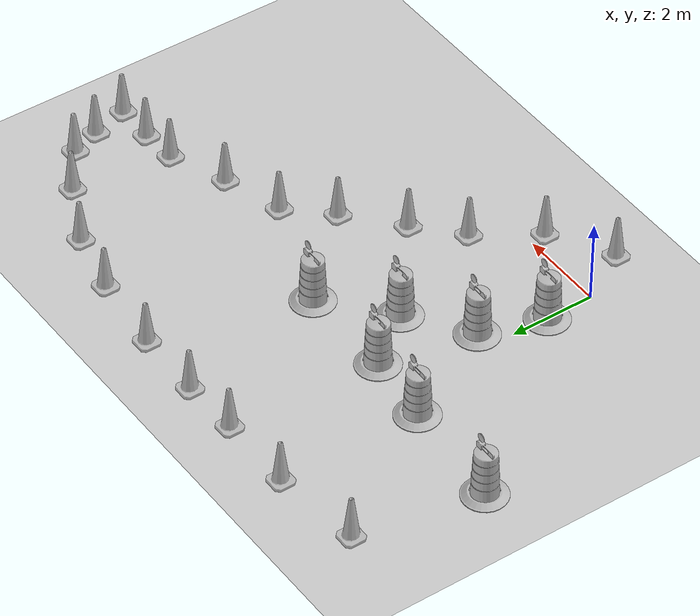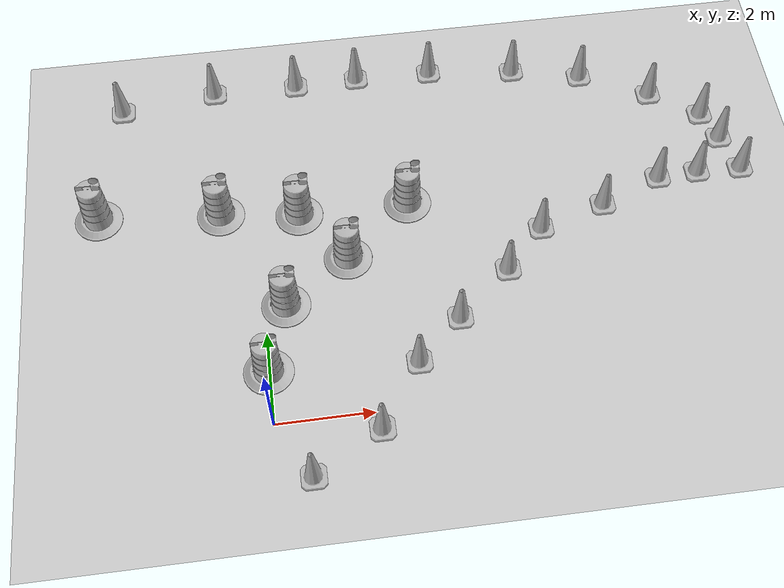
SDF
<sdf version="1.7">
 <world name="default">
  <light name="sun" type="directional">
   <pose>0 0 10 0 -0 0</pose>
   <diffuse>0.8 0.8 0.8 1</diffuse>
   <specular>0.2 0.2 0.2 1</specular>
   <attenuation>
    <range>1000</range>
    <constant>0.9</constant>
    <linear>0.01</linear>
    <quadratic>0.001</quadratic>
   </attenuation>
   <direction>-0.5 0.1 -0.9</direction>
   <spot><inner_angle>0</inner_angle><outer_angle>0</outer_angle><falloff>0</falloff></spot>
  </light>
  <model name="ground_plane">
   <static>1</static>
   <link name="link">
    <collision name="collision">
     <geometry><plane><normal>0 0 1</normal><size>100 100</size></plane></geometry>
     <surface>
      <contact><collide_bitmask>65535</collide_bitmask></contact>
      <friction><ode><mu>100</mu><mu2>50</mu2></ode></friction>
     </surface>
    </collision>
    <visual name="visual">
     <cast_shadows>0</cast_shadows>
     <geometry><plane><normal>0 0 1</normal><size>100 100</size></plane></geometry>
     <material>
      <script><uri>file://media/materials/scripts/gazebo.material</uri><name>Gazebo/Grey</name></script>
     </material>
    </visual>
   </link>
  </model>
  <gravity>0 0 -9.8</gravity>
  <magnetic_field>6e-06 2.3e-05 -4.2e-05</magnetic_field>
  <atmosphere type="adiabatic"/>
  <physics type="ode">
   <max_step_size>0.001</max_step_size>
   <real_time_factor>1</real_time_factor>
   <real_time_update_rate>1000</real_time_update_rate>
  </physics>
  <scene><ambient>0.4 0.4 0.4 1</ambient><background>0.7 0.7 0.7 1</background><shadows>1</shadows></scene>
  <audio><device>default</device></audio>
  <spherical_coordinates>
   <surface_model>EARTH_WGS84</surface_model>
   <latitude_deg>0</latitude_deg>
   <longitude_deg>0</longitude_deg>
   <elevation>0</elevation>
   <heading_deg>0</heading_deg>
  </spherical_coordinates>
  <model name="Construction Barrel">
   <link name="link">
    <inertial>
     <pose>0 0 0.4 0 -0 0</pose>
     <mass>500</mass>
     <inertia><ixx>51.2096</ixx><iyy>51.2096</iyy><izz>25</izz><ixy>0</ixy><ixz>0</ixz><iyz>0</iyz></inertia>
    </inertial>
    <collision name="collision">
     <geometry><mesh><uri>model://construction_barrel/meshes/construction_barrel.dae</uri></mesh></geometry>
    </collision>
    <visual name="visual">
     <geometry><mesh><uri>model://construction_barrel/meshes/construction_barrel.dae</uri></mesh></geometry>
    </visual>
   </link>
   <pose>-0.018904 1.14292 1e-06 3e-06 2e-06 -3.8e-05</pose>
  </model>
  <model name="Construction Barrel_0">
   <link name="link">
    <inertial>
     <pose>0 0 0.4 0 -0 0</pose>
     <mass>500</mass>
     <inertia><ixx>51.2096</ixx><iyy>51.2096</iyy><izz>25</izz><ixy>0</ixy><ixz>0</ixz><iyz>0</iyz></inertia>
    </inertial>
    <collision name="collision">
     <geometry><mesh><uri>model://construction_barrel/meshes/construction_barrel.dae</uri></mesh></geometry>
    </collision>
    <visual name="visual">
     <geometry><mesh><uri>model://construction_barrel/meshes/construction_barrel.dae</uri></mesh></geometry>
    </visual>
   </link>
   <pose>0.437305 2.6102 1e-06 3e-06 2e-06 -3.7e-05</pose>
  </model>
  <model name="Construction Barrel_1">
   <link name="link">
    <inertial>
     <pose>0 0 0.4 0 -0 0</pose>
     <mass>500</mass>
     <inertia><ixx>51.2096</ixx><iyy>51.2096</iyy><izz>25</izz><ixy>0</ixy><ixz>0</ixz><iyz>0</iyz></inertia>
    </inertial>
    <collision name="collision">
     <geometry><mesh><uri>model://construction_barrel/meshes/construction_barrel.dae</uri></mesh></geometry>
    </collision>
    <visual name="visual">
     <geometry><mesh><uri>model://construction_barrel/meshes/construction_barrel.dae</uri></mesh></geometry>
    </visual>
   </link>
   <pose>1.81056 3.58221 1e-06 3e-06 2e-06 -3.5e-05</pose>
  </model>
  <model name="Construction Barrel_2">
   <link name="link">
    <inertial>
     <pose>0 0 0.4 0 -0 0</pose>
     <mass>500</mass>
     <inertia><ixx>51.2096</ixx><iyy>51.2096</iyy><izz>25</izz><ixy>0</ixy><ixz>0</ixz><iyz>0</iyz></inertia>
    </inertial>
    <collision name="collision">
     <geometry><mesh><uri>model://construction_barrel/meshes/construction_barrel.dae</uri></mesh></geometry>
    </collision>
    <visual name="visual">
     <geometry><mesh><uri>model://construction_barrel/meshes/construction_barrel.dae</uri></mesh></geometry>
    </visual>
   </link>
   <pose>3.21513 4.81353 1e-06 3e-06 2e-06 -3.4e-05</pose>
  </model>
  <model name="Construction Cone">
   <link name="link">
    <collision name="collision">
     <geometry>
      <mesh><scale>10 10 10</scale><uri>model://construction_cone/meshes/construction_cone.dae</uri></mesh>
     </geometry>
    </collision>
    <visual name="visual">
     <geometry>
      <mesh><scale>10 10 10</scale><uri>model://construction_cone/meshes/construction_cone.dae</uri></mesh>
     </geometry>
    </visual>
    <inertial>
     <inertia><ixx>1</ixx><ixy>0</ixy><ixz>0</ixz><iyy>1</iyy><iyz>0</iyz><izz>1</izz></inertia>
     <mass>1</mass>
    </inertial>
   </link>
   <pose>0.675695 -1.19338 -1e-05 -1e-06 0 0</pose>
  </model>
  <model name="Construction Cone_0">
   <link name="link">
    <collision name="collision">
     <geometry>
      <mesh><scale>10 10 10</scale><uri>model://construction_cone/meshes/construction_cone.dae</uri></mesh>
     </geometry>
    </collision>
    <visual name="visual">
     <geometry>
      <mesh><scale>10 10 10</scale><uri>model://construction_cone/meshes/construction_cone.dae</uri></mesh>
     </geometry>
    </visual>
    <inertial>
     <inertia><ixx>1</ixx><ixy>0</ixy><ixz>0</ixz><iyy>1</iyy><iyz>0</iyz><izz>1</izz></inertia>
     <mass>1</mass>
    </inertial>
   </link>
   <pose>2.07812 -0.374297 -0 0 -1e-06 0</pose>
  </model>
  <model name="Construction Cone_1">
   <link name="link">
    <collision name="collision">
     <geometry>
      <mesh><scale>10 10 10</scale><uri>model://construction_cone/meshes/construction_cone.dae</uri></mesh>
     </geometry>
    </collision>
    <visual name="visual">
     <geometry>
      <mesh><scale>10 10 10</scale><uri>model://construction_cone/meshes/construction_cone.dae</uri></mesh>
     </geometry>
    </visual>
    <inertial>
     <inertia><ixx>1</ixx><ixy>0</ixy><ixz>0</ixz><iyy>1</iyy><iyz>0</iyz><izz>1</izz></inertia>
     <mass>1</mass>
    </inertial>
   </link>
   <pose>2.97668 0.972655 -5e-06 -4e-06 1e-06 0</pose>
  </model>
  <model name="Construction Cone_2">
   <link name="link">
    <collision name="collision">
     <geometry>
      <mesh><scale>10 10 10</scale><uri>model://construction_cone/meshes/construction_cone.dae</uri></mesh>
     </geometry>
    </collision>
    <visual name="visual">
     <geometry>
      <mesh><scale>10 10 10</scale><uri>model://construction_cone/meshes/construction_cone.dae</uri></mesh>
     </geometry>
    </visual>
    <inertial>
     <inertia><ixx>1</ixx><ixy>0</ixy><ixz>0</ixz><iyy>1</iyy><iyz>0</iyz><izz>1</izz></inertia>
     <mass>1</mass>
    </inertial>
   </link>
   <pose>3.93171 1.86295 -0 0 -0 0</pose>
  </model>
  <model name="Construction Cone_3">
   <link name="link">
    <collision name="collision">
     <geometry>
      <mesh><scale>10 10 10</scale><uri>model://construction_cone/meshes/construction_cone.dae</uri></mesh>
     </geometry>
    </collision>
    <visual name="visual">
     <geometry>
      <mesh><scale>10 10 10</scale><uri>model://construction_cone/meshes/construction_cone.dae</uri></mesh>
     </geometry>
    </visual>
    <inertial>
     <inertia><ixx>1</ixx><ixy>0</ixy><ixz>0</ixz><iyy>1</iyy><iyz>0</iyz><izz>1</izz></inertia>
     <mass>1</mass>
    </inertial>
   </link>
   <pose>5.08822 2.87285 -0 0 -1e-06 0</pose>
  </model>
  <model name="Construction Cone_4">
   <link name="link">
    <collision name="collision">
     <geometry>
      <mesh><scale>10 10 10</scale><uri>model://construction_cone/meshes/construction_cone.dae</uri></mesh>
     </geometry>
    </collision>
    <visual name="visual">
     <geometry>
      <mesh><scale>10 10 10</scale><uri>model://construction_cone/meshes/construction_cone.dae</uri></mesh>
     </geometry>
    </visual>
    <inertial>
     <inertia><ixx>1</ixx><ixy>0</ixy><ixz>0</ixz><iyy>1</iyy><iyz>0</iyz><izz>1</izz></inertia>
     <mass>1</mass>
    </inertial>
   </link>
   <pose>5.9539 3.79334 -6e-06 -4e-06 1e-06 0</pose>
  </model>
  <model name="Construction Cone_5">
   <link name="link">
    <collision name="collision">
     <geometry>
      <mesh><scale>10 10 10</scale><uri>model://construction_cone/meshes/construction_cone.dae</uri></mesh>
     </geometry>
    </collision>
    <visual name="visual">
     <geometry>
      <mesh><scale>10 10 10</scale><uri>model://construction_cone/meshes/construction_cone.dae</uri></mesh>
     </geometry>
    </visual>
    <inertial>
     <inertia><ixx>1</ixx><ixy>0</ixy><ixz>0</ixz><iyy>1</iyy><iyz>0</iyz><izz>1</izz></inertia>
     <mass>1</mass>
    </inertial>
   </link>
   <pose>7.38032 4.22304 -0 0 -0 0</pose>
  </model>
  <model name="Construction Cone_6">
   <link name="link">
    <collision name="collision">
     <geometry>
      <mesh><scale>10 10 10</scale><uri>model://construction_cone/meshes/construction_cone.dae</uri></mesh>
     </geometry>
    </collision>
    <visual name="visual">
     <geometry>
      <mesh><scale>10 10 10</scale><uri>model://construction_cone/meshes/construction_cone.dae</uri></mesh>
     </geometry>
    </visual>
    <inertial>
     <inertia><ixx>1</ixx><ixy>0</ixy><ixz>0</ixz><iyy>1</iyy><iyz>0</iyz><izz>1</izz></inertia>
     <mass>1</mass>
    </inertial>
   </link>
   <pose>8.71171 4.7609 -0 0 -0 0</pose>
  </model>
  <model name="Construction Cone_7">
   <link name="link">
    <collision name="collision">
     <geometry>
      <mesh><scale>10 10 10</scale><uri>model://construction_cone/meshes/construction_cone.dae</uri></mesh>
     </geometry>
    </collision>
    <visual name="visual">
     <geometry>
      <mesh><scale>10 10 10</scale><uri>model://construction_cone/meshes/construction_cone.dae</uri></mesh>
     </geometry>
    </visual>
    <inertial>
     <inertia><ixx>1</ixx><ixy>0</ixy><ixz>0</ixz><iyy>1</iyy><iyz>0</iyz><izz>1</izz></inertia>
     <mass>1</mass>
    </inertial>
   </link>
   <pose>10.5567 4.79134 -0 0 -0 0</pose>
  </model>
  <model name="Construction Cone_8">
   <link name="link">
    <collision name="collision">
     <geometry>
      <mesh><scale>10 10 10</scale><uri>model://construction_cone/meshes/construction_cone.dae</uri></mesh>
     </geometry>
    </collision>
    <visual name="visual">
     <geometry>
      <mesh><scale>10 10 10</scale><uri>model://construction_cone/meshes/construction_cone.dae</uri></mesh>
     </geometry>
    </visual>
    <inertial>
     <inertia><ixx>1</ixx><ixy>0</ixy><ixz>0</ixz><iyy>1</iyy><iyz>0</iyz><izz>1</izz></inertia>
     <mass>1</mass>
    </inertial>
   </link>
   <pose>10.0429 6.35309 -0 0 -1e-06 0</pose>
  </model>
  <model name="Construction Cone_9">
   <link name="link">
    <collision name="collision">
     <geometry>
      <mesh><scale>10 10 10</scale><uri>model://construction_cone/meshes/construction_cone.dae</uri></mesh>
     </geometry>
    </collision>
    <visual name="visual">
     <geometry>
      <mesh><scale>10 10 10</scale><uri>model://construction_cone/meshes/construction_cone.dae</uri></mesh>
     </geometry>
    </visual>
    <inertial>
     <inertia><ixx>1</ixx><ixy>0</ixy><ixz>0</ixz><iyy>1</iyy><iyz>0</iyz><izz>1</izz></inertia>
     <mass>1</mass>
    </inertial>
   </link>
   <pose>10.3041 5.65808 -0 0 -1e-06 0</pose>
  </model>
  <model name="Construction Cone_10">
   <link name="link">
    <collision name="collision">
     <geometry>
      <mesh><scale>10 10 10</scale><uri>model://construction_cone/meshes/construction_cone.dae</uri></mesh>
     </geometry>
    </collision>
    <visual name="visual">
     <geometry>
      <mesh><scale>10 10 10</scale><uri>model://construction_cone/meshes/construction_cone.dae</uri></mesh>
     </geometry>
    </visual>
    <inertial>
     <inertia><ixx>1</ixx><ixy>0</ixy><ixz>0</ixz><iyy>1</iyy><iyz>0</iyz><izz>1</izz></inertia>
     <mass>1</mass>
    </inertial>
   </link>
   <pose>9.59513 4.80863 -6e-06 -4e-06 0 0</pose>
  </model>
  <model name="Construction Cone_11">
   <link name="link">
    <collision name="collision">
     <geometry>
      <mesh><scale>10 10 10</scale><uri>model://construction_cone/meshes/construction_cone.dae</uri></mesh>
     </geometry>
    </collision>
    <visual name="visual">
     <geometry>
      <mesh><scale>10 10 10</scale><uri>model://construction_cone/meshes/construction_cone.dae</uri></mesh>
     </geometry>
    </visual>
    <inertial>
     <inertia><ixx>1</ixx><ixy>0</ixy><ixz>0</ixz><iyy>1</iyy><iyz>0</iyz><izz>1</izz></inertia>
     <mass>1</mass>
    </inertial>
   </link>
   <pose>9.02265 7.06454 -0 0 -0 0</pose>
  </model>
  <model name="Construction Cone_12">
   <link name="link">
    <collision name="collision">
     <geometry>
      <mesh><scale>10 10 10</scale><uri>model://construction_cone/meshes/construction_cone.dae</uri></mesh>
     </geometry>
    </collision>
    <visual name="visual">
     <geometry>
      <mesh><scale>10 10 10</scale><uri>model://construction_cone/meshes/construction_cone.dae</uri></mesh>
     </geometry>
    </visual>
    <inertial>
     <inertia><ixx>1</ixx><ixy>0</ixy><ixz>0</ixz><iyy>1</iyy><iyz>0</iyz><izz>1</izz></inertia>
     <mass>1</mass>
    </inertial>
   </link>
   <pose>7.55819 7.78126 -0 0 -1e-06 0</pose>
  </model>
  <model name="Construction Cone_13">
   <link name="link">
    <collision name="collision">
     <geometry>
      <mesh><scale>10 10 10</scale><uri>model://construction_cone/meshes/construction_cone.dae</uri></mesh>
     </geometry>
    </collision>
    <visual name="visual">
     <geometry>
      <mesh><scale>10 10 10</scale><uri>model://construction_cone/meshes/construction_cone.dae</uri></mesh>
     </geometry>
    </visual>
    <inertial>
     <inertia><ixx>1</ixx><ixy>0</ixy><ixz>0</ixz><iyy>1</iyy><iyz>0</iyz><izz>1</izz></inertia>
     <mass>1</mass>
    </inertial>
   </link>
   <pose>6.0462 8.12827 -8e-06 -6e-06 -0 -0</pose>
  </model>
  <model name="Construction Cone_14">
   <link name="link">
    <collision name="collision">
     <geometry>
      <mesh><scale>10 10 10</scale><uri>model://construction_cone/meshes/construction_cone.dae</uri></mesh>
     </geometry>
    </collision>
    <visual name="visual">
     <geometry>
      <mesh><scale>10 10 10</scale><uri>model://construction_cone/meshes/construction_cone.dae</uri></mesh>
     </geometry>
    </visual>
    <inertial>
     <inertia><ixx>1</ixx><ixy>0</ixy><ixz>0</ixz><iyy>1</iyy><iyz>0</iyz><izz>1</izz></inertia>
     <mass>1</mass>
    </inertial>
   </link>
   <pose>4.14719 8.33324 -1e-05 -1e-06 0 0</pose>
  </model>
  <model name="Construction Cone_15">
   <link name="link">
    <collision name="collision">
     <geometry>
      <mesh><scale>10 10 10</scale><uri>model://construction_cone/meshes/construction_cone.dae</uri></mesh>
     </geometry>
    </collision>
    <visual name="visual">
     <geometry>
      <mesh><scale>10 10 10</scale><uri>model://construction_cone/meshes/construction_cone.dae</uri></mesh>
     </geometry>
    </visual>
    <inertial>
     <inertia><ixx>1</ixx><ixy>0</ixy><ixz>0</ixz><iyy>1</iyy><iyz>0</iyz><izz>1</izz></inertia>
     <mass>1</mass>
    </inertial>
   </link>
   <pose>2.47476 8.36789 -1e-06 2e-06 2e-06 0</pose>
  </model>
  <model name="Construction Cone_16">
   <link name="link">
    <collision name="collision">
     <geometry>
      <mesh><scale>10 10 10</scale><uri>model://construction_cone/meshes/construction_cone.dae</uri></mesh>
     </geometry>
    </collision>
    <visual name="visual">
     <geometry>
      <mesh><scale>10 10 10</scale><uri>model://construction_cone/meshes/construction_cone.dae</uri></mesh>
     </geometry>
    </visual>
    <inertial>
     <inertia><ixx>1</ixx><ixy>0</ixy><ixz>0</ixz><iyy>1</iyy><iyz>0</iyz><izz>1</izz></inertia>
     <mass>1</mass>
    </inertial>
   </link>
   <pose>1.09254 8.32034 0 -0 -0 -0</pose>
  </model>
  <model name="Construction Cone_17">
   <link name="link">
    <collision name="collision">
     <geometry>
      <mesh><scale>10 10 10</scale><uri>model://construction_cone/meshes/construction_cone.dae</uri></mesh>
     </geometry>
    </collision>
    <visual name="visual">
     <geometry>
      <mesh><scale>10 10 10</scale><uri>model://construction_cone/meshes/construction_cone.dae</uri></mesh>
     </geometry>
    </visual>
    <inertial>
     <inertia><ixx>1</ixx><ixy>0</ixy><ixz>0</ixz><iyy>1</iyy><iyz>0</iyz><izz>1</izz></inertia>
     <mass>1</mass>
    </inertial>
   </link>
   <pose>-0.748188 8.33141 -0 0 -0 0</pose>
  </model>
  <model name="Construction Cone_18">
   <link name="link">
    <collision name="collision">
     <geometry>
      <mesh><scale>10 10 10</scale><uri>model://construction_cone/meshes/construction_cone.dae</uri></mesh>
     </geometry>
    </collision>
    <visual name="visual">
     <geometry>
      <mesh><scale>10 10 10</scale><uri>model://construction_cone/meshes/construction_cone.dae</uri></mesh>
     </geometry>
    </visual>
    <inertial>
     <inertia><ixx>1</ixx><ixy>0</ixy><ixz>0</ixz><iyy>1</iyy><iyz>0</iyz><izz>1</izz></inertia>
     <mass>1</mass>
    </inertial>
   </link>
   <pose>-2.81349 8.06634 -0 0 -0 0</pose>
  </model>
  <model name="Construction Barrel_3">
   <link name="link">
    <inertial>
     <pose>0 0 0.4 0 -0 0</pose>
     <mass>500</mass>
     <inertia><ixx>51.2096</ixx><iyy>51.2096</iyy><izz>25</izz><ixy>0</ixy><ixz>0</ixz><iyz>0</iyz></inertia>
    </inertial>
    <collision name="collision">
     <geometry><mesh><uri>model://construction_barrel/meshes/construction_barrel.dae</uri></mesh></geometry>
    </collision>
    <visual name="visual">
     <geometry><mesh><uri>model://construction_barrel/meshes/construction_barrel.dae</uri></mesh></geometry>
    </visual>
   </link>
   <pose>0.885109 4.80257 1e-06 2e-06 3e-06 -6e-06</pose>
  </model>
  <model name="Construction Barrel_4">
   <link name="link">
    <inertial>
     <pose>0 0 0.4 0 -0 0</pose>
     <mass>500</mass>
     <inertia><ixx>51.2096</ixx><iyy>51.2096</iyy><izz>25</izz><ixy>0</ixy><ixz>0</ixz><iyz>0</iyz></inertia>
    </inertial>
    <collision name="collision">
     <geometry><mesh><uri>model://construction_barrel/meshes/construction_barrel.dae</uri></mesh></geometry>
    </collision>
    <visual name="visual">
     <geometry><mesh><uri>model://construction_barrel/meshes/construction_barrel.dae</uri></mesh></geometry>
    </visual>
   </link>
   <pose>-0.777899 5.00391 0 0 0 -3e-06</pose>
  </model>
  <model name="Construction Barrel_5">
   <link name="link">
    <inertial>
     <pose>0 0 0.4 0 -0 0</pose>
     <mass>500</mass>
     <inertia><ixx>51.2096</ixx><iyy>51.2096</iyy><izz>25</izz><ixy>0</ixy><ixz>0</ixz><iyz>0</iyz></inertia>
    </inertial>
    <collision name="collision">
     <geometry><mesh><uri>model://construction_barrel/meshes/construction_barrel.dae</uri></mesh></geometry>
    </collision>
    <visual name="visual">
     <geometry><mesh><uri>model://construction_barrel/meshes/construction_barrel.dae</uri></mesh></geometry>
    </visual>
   </link>
   <pose>-3.36419 5.21751 -1e-06 3e-06 -2e-06 -2e-06</pose>
  </model>
 </world>
</sdf>
